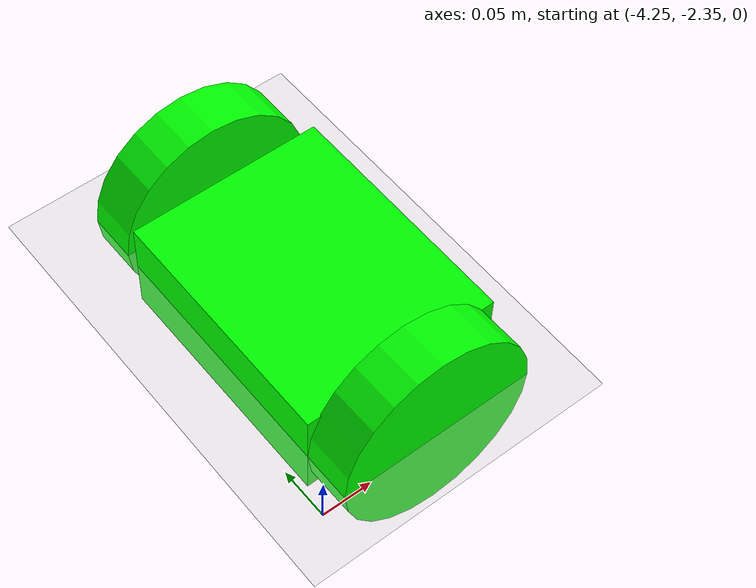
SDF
<sdf version="1.6">
 <world name="default">
  <model name="ground_plane">
   <static>1</static>
   <link name="link">
    <collision name="collision">
     <geometry><plane><normal>0 0 1</normal><size>100 100</size></plane></geometry>
     <surface><friction><ode><mu>100</mu><mu2>50</mu2></ode></friction></surface>
    </collision>
    <visual name="visual">
     <cast_shadows>0</cast_shadows>
     <geometry><plane><normal>0 0 1</normal><size>100 100</size></plane></geometry>
     <material>
      <script><uri>file://media/materials/scripts/gazebo.material</uri><name>Gazebo/Grey</name></script>
     </material>
    </visual>
   </link>
  </model>
  <model name="greenRobot_1">
   <link name="link_1">
    <pose>8e-06 -0.004997 0 0 -0 0</pose>
    <inertial>
     <mass>1</mass>
     <inertia>
      <ixx>0.166667</ixx>
      <ixy>0</ixy>
      <ixz>0</ixz>
      <iyy>0.166667</iyy>
      <iyz>0</iyz>
      <izz>0.166667</izz>
     </inertia>
    </inertial>
    <visual name="visual">
     <pose>0 0 0 0 -0 1.5707</pose>
     <geometry><box><size>0.25 0.2 0.1</size></box></geometry>
     <material>
      <lighting>1</lighting>
      <script><uri>file://media/materials/scripts/gazebo.material</uri><name>Gazebo/Grey</name></script>
      <shader type="pixel"><normal_map>__default__</normal_map></shader>
      <ambient>0 1 0 1</ambient>
      <diffuse>0 1 0 1</diffuse>
      <specular>0 1 0 1</specular>
      <emissive>0 0 0 1</emissive>
     </material>
    </visual>
    <collision name="collision">
     <pose>0 0 0 0 -0 1.5707</pose>
     <geometry><box><size>0.25 0.2 0.1</size></box></geometry>
     <surface>
      <friction>
       <ode><mu>1</mu><mu2>1</mu2><fdir1>0 0 0</fdir1><slip1>0</slip1><slip2>0</slip2></ode>
       <torsional>
        <coefficient>1</coefficient>
        <patch_radius>0</patch_radius>
        <surface_radius>0</surface_radius>
        <use_patch_radius>1</use_patch_radius>
        <ode><slip>0</slip></ode>
       </torsional>
      </friction>
      <bounce><restitution_coefficient>0</restitution_coefficient><threshold>1e+06</threshold></bounce>
      <contact>
       <collide_without_contact>0</collide_without_contact>
       <collide_without_contact_bitmask>1</collide_without_contact_bitmask>
       <collide_bitmask>1</collide_bitmask>
       <ode>
        <soft_cfm>0</soft_cfm>
        <soft_erp>0.2</soft_erp>
        <kp>1e+13</kp>
        <kd>1</kd>
        <max_vel>0.01</max_vel>
        <min_depth>0</min_depth>
       </ode>
       <bullet>
        <split_impulse>1</split_impulse>
        <split_impulse_penetration_threshold>-0.01</split_impulse_penetration_threshold>
        <soft_cfm>0</soft_cfm>
        <soft_erp>0.2</soft_erp>
        <kp>1e+13</kp>
        <kd>1</kd>
       </bullet>
      </contact>
     </surface>
    </collision>
   </link>
   <link name="link_2">
    <pose>-4e-06 0.160013 0 0 -0 0</pose>
    <inertial>
     <mass>1</mass>
     <inertia><ixx>0.145833</ixx><ixy>0</ixy><ixz>0</ixz><iyy>0.145833</iyy><iyz>0</iyz><izz>0.125</izz></inertia>
    </inertial>
    <visual name="visual">
     <pose>0 0 0 1.5707 -0 0</pose>
     <geometry><cylinder><radius>0.1</radius><length>0.05</length></cylinder></geometry>
     <material>
      <lighting>1</lighting>
      <script><uri>file://media/materials/scripts/gazebo.material</uri><name>Gazebo/Grey</name></script>
      <shader type="pixel"><normal_map>__default__</normal_map></shader>
      <ambient>0 1 0 1</ambient>
      <diffuse>0 1 0 1</diffuse>
      <specular>0 1 0 1</specular>
      <emissive>0 0 0 1</emissive>
     </material>
    </visual>
    <collision name="collision">
     <pose>0 0 0 1.5707 -0 0</pose>
     <geometry><cylinder><radius>0.1</radius><length>0.05</length></cylinder></geometry>
     <surface>
      <friction>
       <ode><mu>1</mu><mu2>1</mu2><fdir1>0 0 0</fdir1><slip1>0</slip1><slip2>0</slip2></ode>
       <torsional>
        <coefficient>1</coefficient>
        <patch_radius>0</patch_radius>
        <surface_radius>0</surface_radius>
        <use_patch_radius>1</use_patch_radius>
        <ode><slip>0</slip></ode>
       </torsional>
      </friction>
      <bounce><restitution_coefficient>0</restitution_coefficient><threshold>1e+06</threshold></bounce>
      <contact>
       <collide_without_contact>0</collide_without_contact>
       <collide_without_contact_bitmask>1</collide_without_contact_bitmask>
       <collide_bitmask>1</collide_bitmask>
       <ode>
        <soft_cfm>0</soft_cfm>
        <soft_erp>0.2</soft_erp>
        <kp>1e+13</kp>
        <kd>1</kd>
        <max_vel>0.01</max_vel>
        <min_depth>0</min_depth>
       </ode>
       <bullet>
        <split_impulse>1</split_impulse>
        <split_impulse_penetration_threshold>-0.01</split_impulse_penetration_threshold>
        <soft_cfm>0</soft_cfm>
        <soft_erp>0.2</soft_erp>
        <kp>1e+13</kp>
        <kd>1</kd>
       </bullet>
      </contact>
     </surface>
    </collision>
   </link>
   <link name="link_2_clone">
    <pose>-4e-06 -0.155016 0 -0.03 0 0</pose>
    <inertial>
     <mass>1</mass>
     <inertia><ixx>0.145833</ixx><ixy>0</ixy><ixz>0</ixz><iyy>0.145833</iyy><iyz>0</iyz><izz>0.125</izz></inertia>
    </inertial>
    <visual name="visual">
     <pose>0 0 0 1.5707 -0 0</pose>
     <geometry><cylinder><radius>0.1</radius><length>0.05</length></cylinder></geometry>
     <material>
      <lighting>1</lighting>
      <script><uri>file://media/materials/scripts/gazebo.material</uri><name>Gazebo/Grey</name></script>
      <shader type="pixel"><normal_map>__default__</normal_map></shader>
      <ambient>0 1 0 1</ambient>
      <diffuse>0 1 0 1</diffuse>
      <specular>0 1 0 1</specular>
      <emissive>0 0 0 1</emissive>
     </material>
    </visual>
    <collision name="collision">
     <pose>0 0 0 1.5707 -0 0</pose>
     <geometry><cylinder><radius>0.1</radius><length>0.05</length></cylinder></geometry>
     <surface>
      <friction>
       <ode><mu>1</mu><mu2>1</mu2><fdir1>0 0 0</fdir1><slip1>0</slip1><slip2>0</slip2></ode>
       <torsional>
        <coefficient>1</coefficient>
        <patch_radius>0</patch_radius>
        <surface_radius>0</surface_radius>
        <use_patch_radius>1</use_patch_radius>
        <ode><slip>0</slip></ode>
       </torsional>
      </friction>
      <bounce><restitution_coefficient>0</restitution_coefficient><threshold>1e+06</threshold></bounce>
      <contact>
       <collide_without_contact>0</collide_without_contact>
       <collide_without_contact_bitmask>1</collide_without_contact_bitmask>
       <collide_bitmask>1</collide_bitmask>
       <ode>
        <soft_cfm>0</soft_cfm>
        <soft_erp>0.2</soft_erp>
        <kp>1e+13</kp>
        <kd>1</kd>
        <max_vel>0.01</max_vel>
        <min_depth>0</min_depth>
       </ode>
       <bullet>
        <split_impulse>1</split_impulse>
        <split_impulse_penetration_threshold>-0.01</split_impulse_penetration_threshold>
        <soft_cfm>0</soft_cfm>
        <soft_erp>0.2</soft_erp>
        <kp>1e+13</kp>
        <kd>1</kd>
       </bullet>
      </contact>
     </surface>
    </collision>
   </link>
   <joint name="link_1_JOINT_3" type="revolute">
    <parent>link_1</parent>
    <child>link_2_clone</child>
    <axis>
     <xyz>1 0 0</xyz>
     <use_parent_model_frame>0</use_parent_model_frame>
     <limit>
      <lower>-1.79769e+308</lower>
      <upper>1.79769e+308</upper>
      <effort>-1</effort>
      <velocity>-1</velocity>
     </limit>
     <dynamics>
      <spring_reference>0</spring_reference>
      <spring_stiffness>0</spring_stiffness>
      <damping>0</damping>
     </dynamics>
    </axis>
    <physics>
     <ode><limit><cfm>0</cfm><erp>0.2</erp></limit><suspension><cfm>0</cfm><erp>0.2</erp></suspension></ode>
    </physics>
   </joint>
   <joint name="link_1_JOINT_4" type="revolute">
    <parent>link_1</parent>
    <child>link_2</child>
    <axis>
     <xyz>1 0 0</xyz>
     <use_parent_model_frame>0</use_parent_model_frame>
     <limit>
      <lower>-1.79769e+308</lower>
      <upper>1.79769e+308</upper>
      <effort>-1</effort>
      <velocity>-1</velocity>
     </limit>
     <dynamics>
      <spring_reference>0</spring_reference>
      <spring_stiffness>0</spring_stiffness>
      <damping>0</damping>
     </dynamics>
    </axis>
    <physics>
     <ode><limit><cfm>0</cfm><erp>0.2</erp></limit><suspension><cfm>0</cfm><erp>0.2</erp></suspension></ode>
    </physics>
   </joint>
   <static>0</static>
   <pose>-4.12595 -2.16885 0 0 -0 0</pose>
  </model>
 </world>
</sdf>
